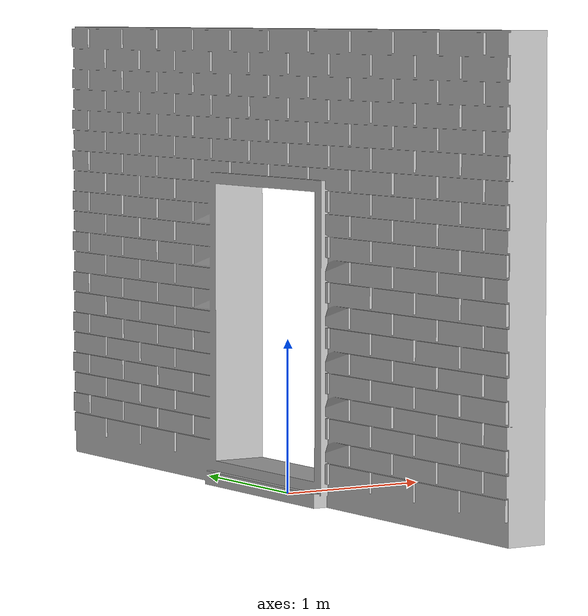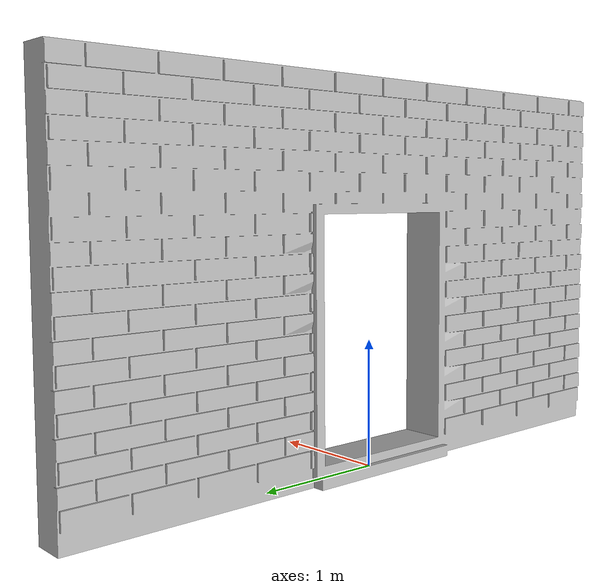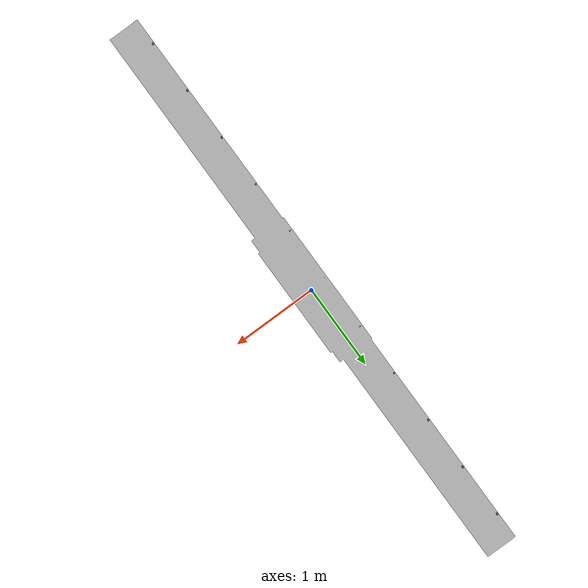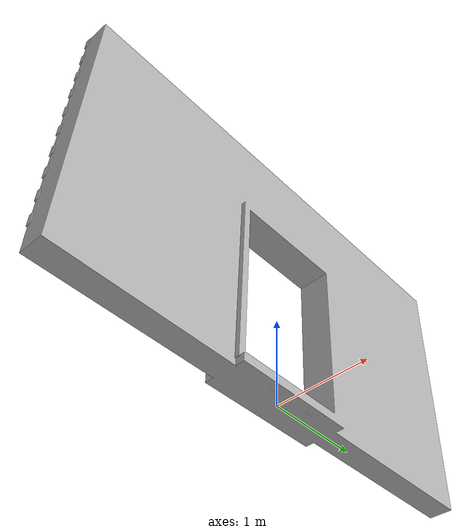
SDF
<sdf version="1.5">
  <model name="wall_with_center_door">
    <link name="wall_with_center_door">
      <visual name="visual">
        <pose>0.0 0.0 0.0 1.57079632679 0.0 3.14159265359</pose>
        <geometry>
          <mesh>
            <uri>wall_with_center_door.obj</uri>
          </mesh>
        </geometry>
      </visual>
      <collision name="collision_Wall.001">
        <pose>0.0 -1.5569394826889038 1.5 0.0 0.0 0.0</pose>
        <geometry>
          <box>
            <size>0.25 1.8581310510635376 3.0</size>
          </box>
        </geometry>
      </collision>
      <collision name="collision_Wall.002">
        <pose>0.0 1.5570484399795532 1.5 0.0 0.0 0.0</pose>
        <geometry>
          <box>
            <size>0.25 1.8626335859298706 3.0</size>
          </box>
        </geometry>
      </collision>
      <collision name="collision_Wall.003">
        <pose>0.0 0.0 2.5 0.0 0.0 0.0</pose>
        <geometry>
          <box>
            <size>0.25 1.25 1.0</size>
          </box>
        </geometry>
      </collision>
    </link>
    <frame name="frame_InDoor">
      <pose>0.0 0.0 1.0 0.0 0.0 0.0</pose>
    </frame>
  </model>
</sdf>
